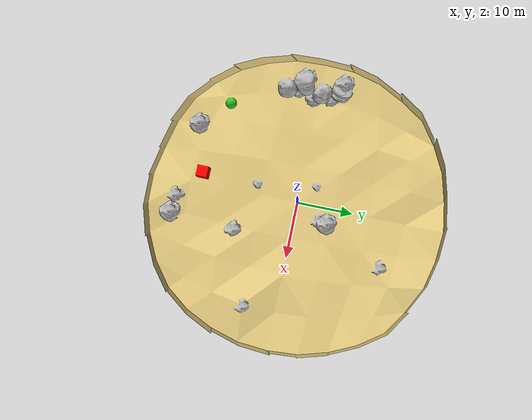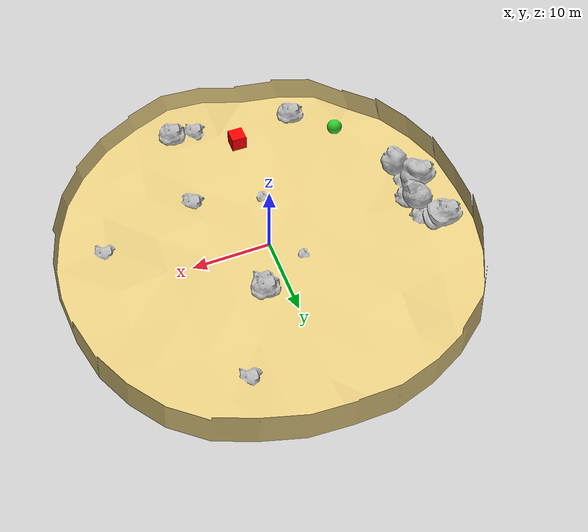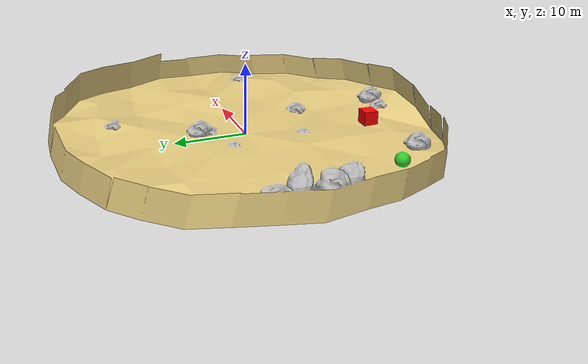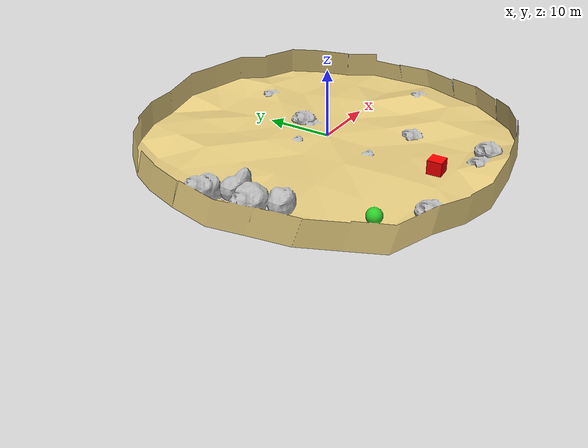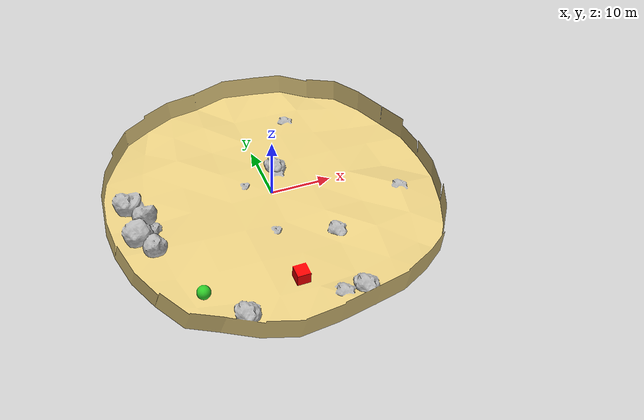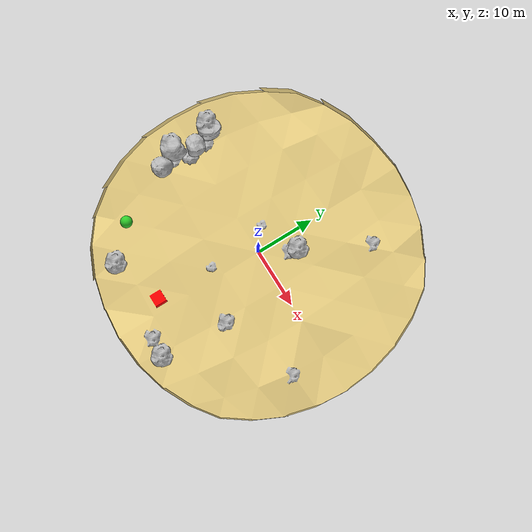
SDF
<?xml version="1.0" ?>
<sdf version="1.6">
    <world name="default">
        <!-- Sun Light Source -->
        <physics name="1ms" type="ode">
            <!-- - Sets the simulation step size to 0.001 seconds -->
            <max_step_size>0.001</max_step_size>
            <!-- - Configures the simulation to run at real-time speed -->
            <real_time_factor>1.0</real_time_factor>
        </physics>
        <light type="directional" name="sun">
            <cast_shadows>true</cast_shadows>
            <pose>0 0 10 0 0 0</pose>
            <diffuse>1 1 1 1</diffuse>
            <specular>0.1 0.1 0.1 1</specular>
            <attenuation>
                <range>1000</range>
                <constant>0.9</constant>
                <linear>0.01</linear>
                <quadratic>0.001</quadratic>
            </attenuation>
            <direction>-0.5 0.5 -1</direction>
        </light>

        <!-- Sandy Terrain -->
        <model name="sandy_terrain">
            <static>true</static>
            <link name="sand_surface">
                <collision name="collision">
                    <geometry>
                        <mesh>
                            <uri>model://turtle_on_land_demo/world/SANDY_TERRAINII.dae</uri>
                        </mesh>
                    </geometry>
                    <surface>
                        <friction>
                            <ode>
                                <mu>0.4</mu>
                                <mu2>0.4</mu2>
                                <slip1>0.2</slip1>
                                <slip2>0.2</slip2>
                            </ode>
                            <torsional>
                                <coefficient>0.02</coefficient> <!-- Rolling friction coefficient -->
                                <use_patch_radius>true</use_patch_radius>
                                <patch_radius>0.05</patch_radius>
                                <surface_radius>0.05</surface_radius>
                                <ode>
                                    <slip>0.01</slip>
                                </ode>
                            </torsional>
                        </friction>
                        <bounce>
                            <restitution_coefficient>0.05</restitution_coefficient>
                            <threshold>100.0</threshold>
                        </bounce>
                        <contact>
                            <ode>
                                <soft_cfm>0.1</soft_cfm>     <!-- Increased compressibility -->
                                <soft_erp>0.1</soft_erp>     <!-- Lower elasticity -->
                                <kp>500.0</kp>               <!-- Lower stiffness -->
                                <kd>5.0</kd>                 <!-- Reduced damping -->
                                <max_vel>0.1</max_vel>
                                <min_depth>0.01</min_depth>
                            </ode>
                        </contact>
                    </surface>
                </collision>
                <visual name="visual">
                    <geometry>
                        <mesh>
                            <uri>model://turtle_on_land_demo/world/SANDY_TERRAINII.dae</uri>
                        </mesh>
                    </geometry>
                </visual>
            </link>
        </model>
    </world>
</sdf>
